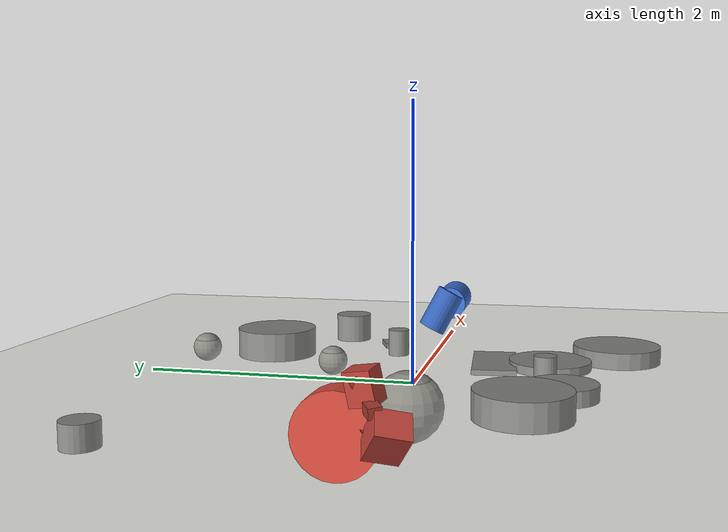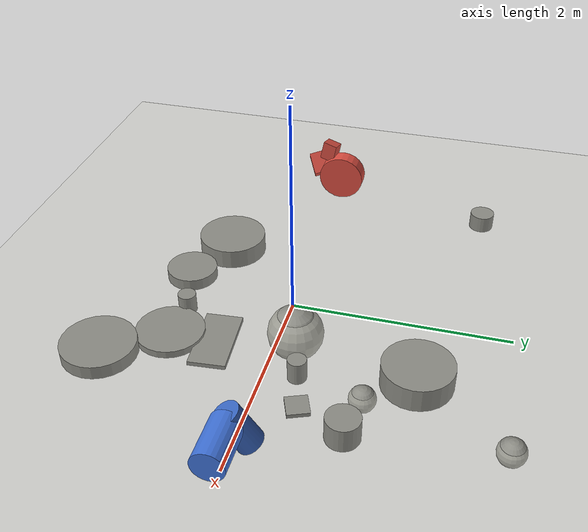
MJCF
<mujoco model="rabbitstew"><compiler angle="radian" autolimits="true" /><option timestep="0.005" gravity="0 0 -9.81" /><default><geom friction="1 0.005 0.0001" condim="3" solref="0.01 1" solimp="0.9 0.95 0.001" /><joint armature="0.005" /><motor ctrllimited="true" ctrlrange="-1 1" /></default><worldbody><geom name="floor" type="plane" size="0 0 1" rgba="0.85 0.85 0.8 1" /><light pos="0 0 4" dir="0 0 -1" diffuse="0.8 0.8 0.8" /><geom name="scenery0" pos="1.23963 0.381369 0.0181799" quat="0.981525 0 0 0.191334" rgba="0.55 0.55 0.52 1" type="box" size="0.101388 0.0976901 0.0181799" /><geom name="scenery1" pos="1.44807 0.799914 0.111076" quat="1 0 0 0" rgba="0.55 0.55 0.52 1" type="cylinder" size="0.146416 0.111076" /><geom name="scenery2" pos="0.906441 0.288239 0.103159" quat="1 0 0 0" rgba="0.55 0.55 0.52 1" type="cylinder" size="0.0825213 0.103159" /><geom name="scenery3" pos="-0.194137 -1.05713 0.054879" quat="1 0 0 0" rgba="0.55 0.55 0.52 1" type="cylinder" size="0.236885 0.054879" /><geom name="scenery4" pos="0.928732 0.850649 -0.0808143" quat="1 0 0 0" rgba="0.55 0.55 0.52 1" type="sphere" size="0.118982" /><geom name="scenery5" pos="0.666258 -0.513621 0.020354" quat="0.999135 0 0 0.0415923" rgba="0.55 0.55 0.52 1" type="box" size="0.322254 0.166986 0.020354" /><geom name="scenery6" pos="0.298192 -0.914174 0.0896953" quat="1 0 0 0" rgba="0.55 0.55 0.52 1" type="cylinder" size="0.0824806 0.0896953" /><geom name="scenery7" pos="0.668203 -0.935434 0.0337011" quat="1 0 0 0" rgba="0.55 0.55 0.52 1" type="cylinder" size="0.309083 0.0337011" /><geom name="scenery8" pos="-1.7752 1.54712 0.0802761" quat="1 0 0 0" rgba="0.55 0.55 0.52 1" type="cylinder" size="0.117739 0.0802761" /><geom name="scenery9" pos="0.129776 0.0585466 -0.209119" quat="1 0 0 0" rgba="0.55 0.55 0.52 1" type="sphere" size="0.265554" /><geom name="scenery10" pos="0.724562 1.26177 0.110353" quat="1 0 0 0" rgba="0.55 0.55 0.52 1" type="cylinder" size="0.310786 0.110353" /><geom name="scenery11" pos="-0.711715 -0.8217 0.0940756" quat="1 0 0 0" rgba="0.55 0.55 0.52 1" type="cylinder" size="0.32129 0.0940756" /><geom name="scenery12" pos="1.19273 2.078 -0.0753688" quat="1 0 0 0" rgba="0.55 0.55 0.52 1" type="sphere" size="0.122085" /><geom name="scenery13" pos="1.03829 -1.43847 0.0633371" quat="1 0 0 0" rgba="0.55 0.55 0.52 1" type="cylinder" size="0.334956 0.0633371" /><body name="r0_p0" pos="-2 2.44929e-16 0.255077" quat="1 -0 -0 -6.12323e-17"><freejoint name="r0_root" /><geom type="cylinder" size="0.231617 0.0801017" quat="0.707107 0 0.707107 0" name="r0_g0" pos="0 0 0" mass="10.6031" rgba="0.850 0.300 0.250 1" /><body name="r0_p1" pos="-0.0405801 -0.162294 0.165249" quat="0.368695 -0.576646 -0.503427 -0.527356"><joint name="r0_j1" type="hinge" axis="0.0456348 0.217169 0.975067" damping="0.265553" /><geom type="box" size="0.0907609 0.061848 0.0752903" name="r0_g1" pos="0.0907609 0 0" mass="1.32776" rgba="0.748 0.264 0.220 1" /><body name="r0_p3" pos="0.00620917 -0.061848 -0.0412958" quat="0.608957 0.2027 0.317979 -0.697835"><joint name="r0_j3" type="slide" axis="-0.971027 0.232761 0.054121" damping="0.0296087" range="-0.0361197 0.0361197" /><geom type="box" size="0.0436839 0.0297679 0.0362378" name="r0_g3" pos="0.0436839 0 0" mass="0.148044" rgba="0.646 0.228 0.190 1" /></body><body name="r0_p4" pos="0.0907609 -0.0222619 0.0449414" quat="0.680081 -0.372869 0.427717 0.464238"><joint name="r0_j4" type="slide" axis="-0.282238 0.921439 -0.267004" damping="0.265553" range="-0.0473244 0.0473244" /><geom type="box" size="0.0389818 0.0697022 0.0390073" name="r0_g4" pos="0.0389818 0 0" mass="0.332976" rgba="0.646 0.228 0.190 1" /></body></body><body name="r0_p2" pos="-0.0700912 -0.226735 -0.0473044" quat="-0.132557 -0.457165 0.632875 -0.610653"><joint name="r0_j2" type="slide" axis="0.424841 0.674603 0.603673" damping="0.526884" range="-0.129495 0.129495" /><geom type="box" size="0.114048 0.0777165 0.0946078" name="r0_g2" pos="0.114048 0 0" mass="2.63442" rgba="0.748 0.264 0.220 1" /><body name="r0_p5" pos="0.00780228 -0.0777165 -0.0518912" quat="0.608957 0.2027 0.317979 -0.697835"><joint name="r0_j5" type="slide" axis="-0.971027 0.232761 0.054121" damping="0.0587467" range="-0.0453871 0.0453871" /><geom type="box" size="0.0548921 0.0374056 0.0455355" name="r0_g5" pos="0.0548921 0 0" mass="0.293734" rgba="0.646 0.228 0.190 1" /></body></body></body><body name="r1_p0" pos="2 -4.89859e-16 0.288499" quat="6.12323e-17 0 0 1"><freejoint name="r1_root" /><geom type="cylinder" size="0.140723 0.216996" quat="0.707107 0 0.707107 0" name="r1_g0" pos="0 0 0" mass="9.54662" rgba="0.250 0.450 0.850 1" /><body name="r1_p1" pos="0.216996 0.0125932 0.101724" quat="0.731069 -0.210526 0.636641 -0.126119"><joint name="r1_j1" type="slide" axis="-0.991624 0.107107 0.0721864" damping="1.90932" range="-0.268973 0.268973" /><geom type="cylinder" size="0.119141 0.183716" quat="0.707107 0 0.707107 0" name="r1_g1" pos="0.183716 0 0" mass="5.79338" rgba="0.220 0.396 0.748 1" /></body></body></worldbody><actuator><motor name="r0_a4_0" joint="r0_j4" gear="5.31106" /><motor name="r1_a1_0" joint="r1_j1" gear="38.1865" /></actuator></mujoco>
